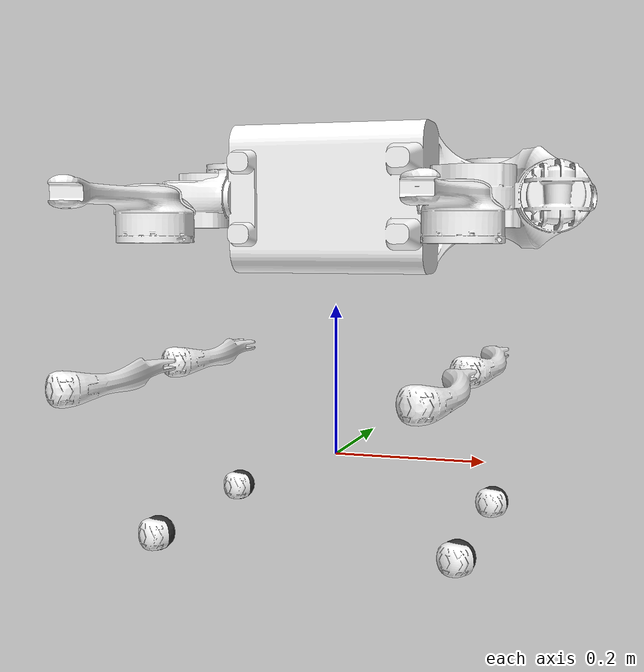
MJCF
<mujoco model="go2_robot">
  <compiler angle="radian" meshdir="meshes/"/>

  <default>
    <joint damping="0.1" armature="0.01" frictionloss="0.05"/>
  </default>

  <asset>
    <!-- Go2 STL mesh files (convert from DAE) -->
    <mesh name="base" file="base.STL"/>
    <mesh name="hip" file="hip.STL"/>
    <mesh name="thigh" file="thigh.STL"/>
    <mesh name="thigh_mirror" file="thigh_mirror.STL"/>
    <mesh name="calf" file="calf.STL"/>
    <mesh name="calf_mirror" file="calf_mirror.STL"/>
    <mesh name="foot" file="foot.STL"/>
  </asset>

  <worldbody>
    <!-- Go2 Robot -->
    <body name="base" pos="0 0 0.34">
      <!-- Base link inertial from URDF -->
      <inertial pos="0.021112 0 -0.005366" quat="1 0 0 0" mass="6.921"
                diaginertia="0.02448 0.098077 0.107"/>
      <joint name="floating_base_joint" type="free" limited="false" actuatorfrclimited="false"/>
      <geom type="mesh" contype="0" conaffinity="0" group="1" density="0" rgba="1 1 1 1" mesh="base"/>
      <geom type="mesh" rgba="1 1 1 1" mesh="base"/>

      <!-- Front Left Leg -->
      <body name="FL_hip" pos="0.1934 0.0465 0">
        <inertial pos="-0.0054 0.00194 -0.000105" quat="1 0 0 0" mass="0.678"
                  diaginertia="0.00048 0.000884 0.000596"/>
        <joint name="FL_hip_joint" pos="0 0 0" axis="1 0 0" range="-1.0472 1.0472" actuatorfrcrange="-23.7 23.7"/>
        <geom type="mesh" contype="0" conaffinity="0" group="1" density="0" rgba="1 1 1 1" mesh="hip"/>
        <geom type="mesh" rgba="1 1 1 1" mesh="hip"/>

        <body name="FL_thigh" pos="0 0.0955 0">
          <inertial pos="-0.00374 -0.0223 -0.0327" quat="1 0 0 0" mass="1.152"
                    diaginertia="0.00584 0.0058 0.00103"/>
          <joint name="FL_thigh_joint" pos="0 0 0" axis="0 1 0" range="-1.5708 3.4907" actuatorfrcrange="-23.7 23.7"/>
          <geom type="mesh" contype="0" conaffinity="0" group="1" density="0" rgba="1 1 1 1" mesh="thigh"/>
          <geom type="mesh" rgba="1 1 1 1" mesh="thigh"/>

          <body name="FL_calf" pos="0 0 -0.213">
            <inertial pos="0.00548 -0.000975 -0.115" quat="1 0 0 0" mass="0.154"
                      diaginertia="0.00108 0.0011 3.29E-05"/>
            <joint name="FL_calf_joint" pos="0 0 0" axis="0 1 0" range="-2.7227 -0.83776" actuatorfrcrange="-35.55 35.55"/>
            <geom type="mesh" contype="0" conaffinity="0" group="1" density="0" rgba="1 1 1 1" mesh="calf"/>
            <geom type="mesh" rgba="1 1 1 1" mesh="calf"/>

            <!-- Foot -->
            <body name="FL_foot" pos="0 0 -0.213">
              <inertial pos="0 0 0" quat="1 0 0 0" mass="0.04" diaginertia="9.6e-06 9.6e-06 9.6e-06"/>
              <geom type="mesh" contype="0" conaffinity="0" group="1" density="0" rgba="1 1 1 1" mesh="foot"/>
              <geom name="FL_foot" pos="-0.002 0 0" type="sphere" size="0.022" rgba="0.2 0.2 0.2 1"/>
            </body>
          </body>
        </body>
      </body>

      <!-- Front Right Leg -->
      <body name="FR_hip" pos="0.1934 -0.0465 0">
        <inertial pos="-0.0054 -0.00194 -0.000105" quat="1 0 0 0" mass="0.678"
                  diaginertia="0.00048 0.000884 0.000596"/>
        <joint name="FR_hip_joint" pos="0 0 0" axis="1 0 0" range="-1.0472 1.0472" actuatorfrcrange="-23.7 23.7"/>
        <geom type="mesh" contype="0" conaffinity="0" group="1" density="0" rgba="1 1 1 1" mesh="hip" euler="3.1415 0 0"/>
        <geom type="mesh" rgba="1 1 1 1" mesh="hip" euler="3.1415 0 0"/>

        <body name="FR_thigh" pos="0 -0.0955 0">
          <inertial pos="-0.00374 0.0223 -0.0327" quat="1 0 0 0" mass="1.152"
                    diaginertia="0.00584 0.0058 0.00103"/>
          <joint name="FR_thigh_joint" pos="0 0 0" axis="0 1 0" range="-1.5708 3.4907" actuatorfrcrange="-23.7 23.7"/>
          <geom type="mesh" contype="0" conaffinity="0" group="1" density="0" rgba="1 1 1 1" mesh="thigh_mirror"/>
          <geom type="mesh" rgba="1 1 1 1" mesh="thigh_mirror"/>

          <body name="FR_calf" pos="0 0 -0.213">
            <inertial pos="0.00548 0.000975 -0.115" quat="1 0 0 0" mass="0.154"
                      diaginertia="0.00108 0.0011 3.29E-05"/>
            <joint name="FR_calf_joint" pos="0 0 0" axis="0 1 0" range="-2.7227 -0.83776" actuatorfrcrange="-35.55 35.55"/>
            <geom type="mesh" contype="0" conaffinity="0" group="1" density="0" rgba="1 1 1 1" mesh="calf_mirror"/>
            <geom type="mesh" rgba="1 1 1 1" mesh="calf_mirror"/>

            <body name="FR_foot" pos="0 0 -0.213">
              <inertial pos="0 0 0" quat="1 0 0 0" mass="0.04" diaginertia="9.6e-06 9.6e-06 9.6e-06"/>
              <geom type="mesh" contype="0" conaffinity="0" group="1" density="0" rgba="1 1 1 1" mesh="foot"/>
              <geom name="FR_foot" pos="-0.002 0 0" type="sphere" size="0.022" rgba="0.2 0.2 0.2 1"/>
            </body>
          </body>
        </body>
      </body>

      <!-- Rear Left Leg -->
      <body name="RL_hip" pos="-0.1934 0.0465 0">
        <inertial pos="0.0054 0.00194 -0.000105" quat="1 0 0 0" mass="0.678"
                  diaginertia="0.00048 0.000884 0.000596"/>
        <joint name="RL_hip_joint" pos="0 0 0" axis="1 0 0" range="-1.0472 1.0472" actuatorfrcrange="-23.7 23.7"/>
        <geom type="mesh" contype="0" conaffinity="0" group="1" density="0" rgba="1 1 1 1" mesh="hip" euler="0 3.1415 0"/>
        <geom type="mesh" rgba="1 1 1 1" mesh="hip" euler="0 3.1415 0"/>

        <body name="RL_thigh" pos="0 0.0955 0">
          <inertial pos="-0.00374 -0.0223 -0.0327" quat="1 0 0 0" mass="1.152"
                    diaginertia="0.00584 0.0058 0.00103"/>
          <joint name="RL_thigh_joint" pos="0 0 0" axis="0 1 0" range="-0.5236 4.5379" actuatorfrcrange="-23.7 23.7"/>
          <geom type="mesh" contype="0" conaffinity="0" group="1" density="0" rgba="1 1 1 1" mesh="thigh"/>
          <geom type="mesh" rgba="1 1 1 1" mesh="thigh"/>

          <body name="RL_calf" pos="0 0 -0.213">
            <inertial pos="0.00548 -0.000975 -0.115" quat="1 0 0 0" mass="0.154"
                      diaginertia="0.00108 0.0011 3.29E-05"/>
            <joint name="RL_calf_joint" pos="0 0 0" axis="0 1 0" range="-2.7227 -0.83776" actuatorfrcrange="-35.55 35.55"/>
            <geom type="mesh" contype="0" conaffinity="0" group="1" density="0" rgba="1 1 1 1" mesh="calf"/>
            <geom type="mesh" rgba="1 1 1 1" mesh="calf"/>

            <body name="RL_foot" pos="0 0 -0.213">
              <inertial pos="0 0 0" quat="1 0 0 0" mass="0.04" diaginertia="9.6e-06 9.6e-06 9.6e-06"/>
              <geom type="mesh" contype="0" conaffinity="0" group="1" density="0" rgba="1 1 1 1" mesh="foot"/>
              <geom name="RL_foot" pos="-0.002 0 0" type="sphere" size="0.022" rgba="0.2 0.2 0.2 1"/>
            </body>
          </body>
        </body>
      </body>

      <!-- Rear Right Leg -->
      <body name="RR_hip" pos="-0.1934 -0.0465 0">
        <inertial pos="0.0054 -0.00194 -0.000105" quat="1 0 0 0" mass="0.678"
                  diaginertia="0.00048 0.000884 0.000596"/>
        <joint name="RR_hip_joint" pos="0 0 0" axis="1 0 0" range="-1.0472 1.0472" actuatorfrcrange="-23.7 23.7"/>
        <geom type="mesh" contype="0" conaffinity="0" group="1" density="0" rgba="1 1 1 1" mesh="hip" euler="3.1415 3.1415 0"/>
        <geom type="mesh" rgba="1 1 1 1" mesh="hip" euler="3.1415 3.1415 0"/>

        <body name="RR_thigh" pos="0 -0.0955 0">
          <inertial pos="-0.00374 0.0223 -0.0327" quat="1 0 0 0" mass="1.152"
                    diaginertia="0.00584 0.0058 0.00103"/>
          <joint name="RR_thigh_joint" pos="0 0 0" axis="0 1 0" range="-0.5236 4.5379" actuatorfrcrange="-23.7 23.7"/>
          <geom type="mesh" contype="0" conaffinity="0" group="1" density="0" rgba="1 1 1 1" mesh="thigh_mirror"/>
          <geom type="mesh" rgba="1 1 1 1" mesh="thigh_mirror"/>

          <body name="RR_calf" pos="0 0 -0.213">
            <inertial pos="0.00548 0.000975 -0.115" quat="1 0 0 0" mass="0.154"
                      diaginertia="0.00108 0.0011 3.29E-05"/>
            <joint name="RR_calf_joint" pos="0 0 0" axis="0 1 0" range="-2.7227 -0.83776" actuatorfrcrange="-35.55 35.55"/>
            <geom type="mesh" contype="0" conaffinity="0" group="1" density="0" rgba="1 1 1 1" mesh="calf_mirror"/>
            <geom type="mesh" rgba="1 1 1 1" mesh="calf_mirror"/>

            <body name="RR_foot" pos="0 0 -0.213">
              <inertial pos="0 0 0" quat="1 0 0 0" mass="0.04" diaginertia="9.6e-06 9.6e-06 9.6e-06"/>
              <geom type="mesh" contype="0" conaffinity="0" group="1" density="0" rgba="1 1 1 1" mesh="foot"/>
              <geom name="RR_foot" pos="-0.002 0 0" type="sphere" size="0.022" rgba="0.2 0.2 0.2 1"/>
            </body>
          </body>
        </body>
      </body>
    </body>
  </worldbody>

  <actuator>
    <motor name="FL_hip_joint" joint="FL_hip_joint"/>
    <motor name="FL_thigh_joint" joint="FL_thigh_joint"/>
    <motor name="FL_calf_joint" joint="FL_calf_joint"/>
    <motor name="FR_hip_joint" joint="FR_hip_joint"/>
    <motor name="FR_thigh_joint" joint="FR_thigh_joint"/>
    <motor name="FR_calf_joint" joint="FR_calf_joint"/>
    <motor name="RL_hip_joint" joint="RL_hip_joint"/>
    <motor name="RL_thigh_joint" joint="RL_thigh_joint"/>
    <motor name="RL_calf_joint" joint="RL_calf_joint"/>
    <motor name="RR_hip_joint" joint="RR_hip_joint"/>
    <motor name="RR_thigh_joint" joint="RR_thigh_joint"/>
    <motor name="RR_calf_joint" joint="RR_calf_joint"/>
  </actuator>
</mujoco>
